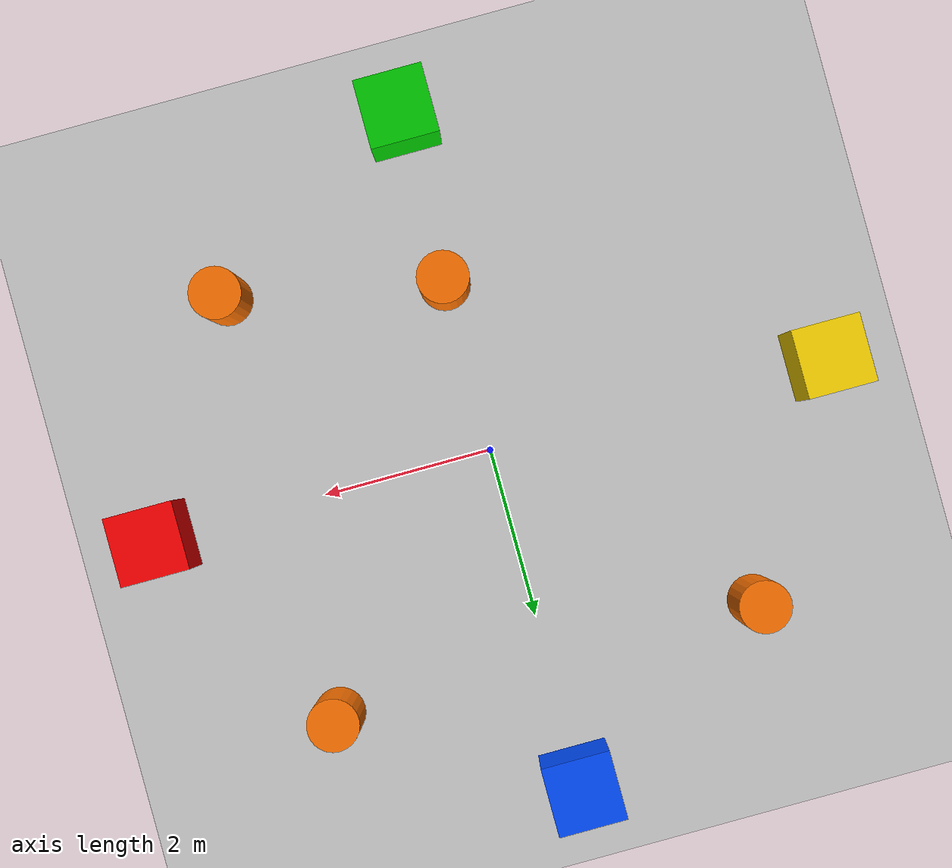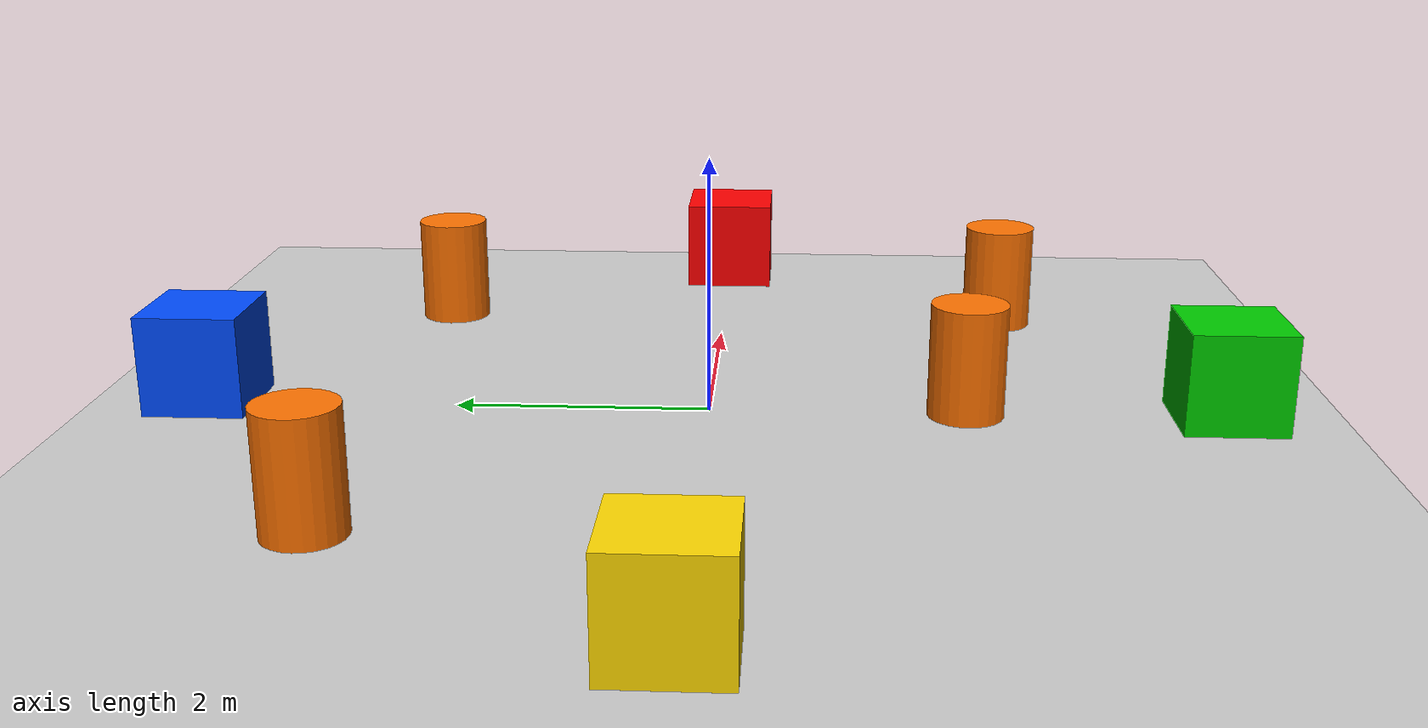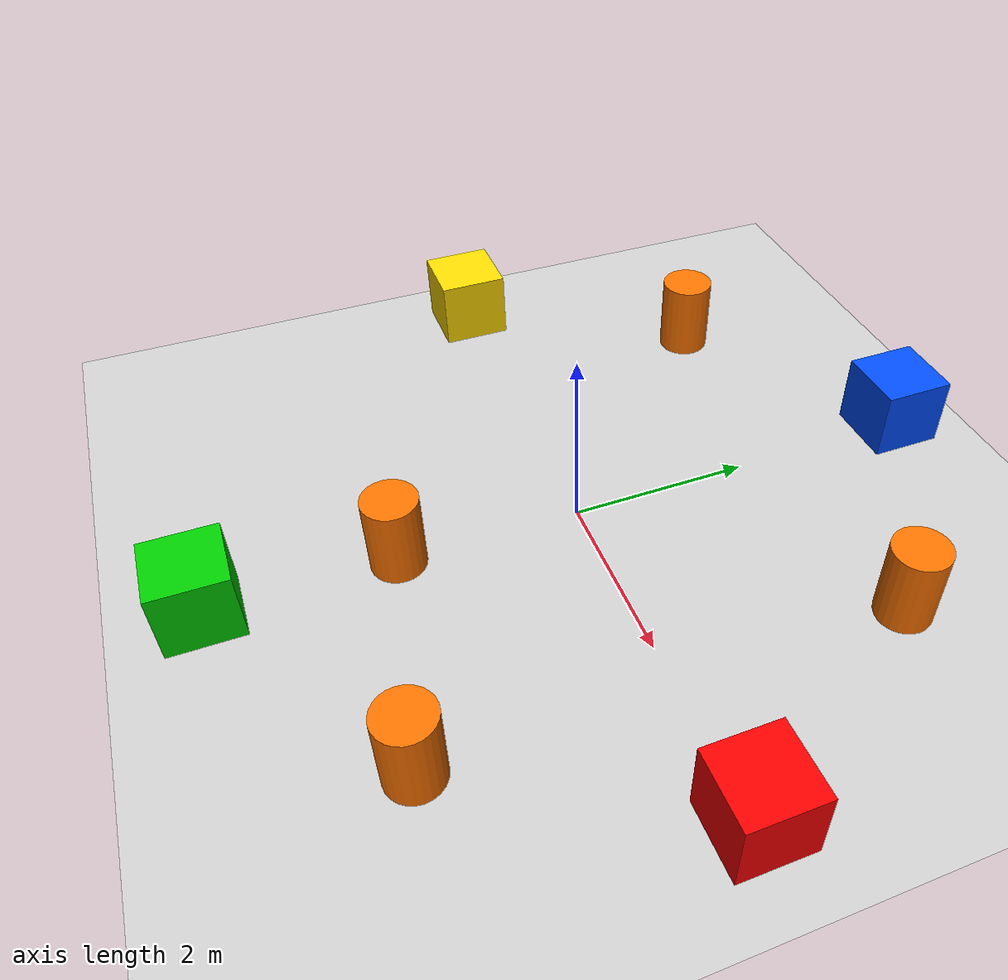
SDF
<?xml version="1.0"?>
<sdf version="1.6">
  <world name="default">
    <include><uri>model://ground_plane</uri></include>
    <include><uri>model://sun</uri></include>

    <gui fullscreen="0">
      <camera name="user_camera">
        <pose>-5 -5 6 0 0.7 0.785</pose>
      </camera>
    </gui>

    <model name="kirmizi_on">
      <static>true</static>
      <pose>4 0 0.4 0 0 0</pose>
      <link name="link">
        <collision name="collision"><geometry><box><size>0.8 0.8 0.8</size></box></geometry></collision>
        <visual name="visual">
          <geometry><box><size>0.8 0.8 0.8</size></box></geometry>
          <material><ambient>1 0 0 1</ambient><diffuse>1 0 0 1</diffuse></material>
        </visual>
      </link>
    </model>
    <model name="mavi_sol">
      <static>true</static>
      <pose>0 4 0.4 0 0 0</pose>
      <link name="link">
        <collision name="collision"><geometry><box><size>0.8 0.8 0.8</size></box></geometry></collision>
        <visual name="visual">
          <geometry><box><size>0.8 0.8 0.8</size></box></geometry>
          <material><ambient>0 0.3 1 1</ambient><diffuse>0 0.3 1 1</diffuse></material>
        </visual>
      </link>
    </model>
    <model name="yesil_sag">
      <static>true</static>
      <pose>0 -4 0.4 0 0 0</pose>
      <link name="link">
        <collision name="collision"><geometry><box><size>0.8 0.8 0.8</size></box></geometry></collision>
        <visual name="visual">
          <geometry><box><size>0.8 0.8 0.8</size></box></geometry>
          <material><ambient>0 0.8 0 1</ambient><diffuse>0 0.8 0 1</diffuse></material>
        </visual>
      </link>
    </model>
    <model name="sari_arka">
      <static>true</static>
      <pose>-4 0 0.4 0 0 0</pose>
      <link name="link">
        <collision name="collision"><geometry><box><size>0.8 0.8 0.8</size></box></geometry></collision>
        <visual name="visual">
          <geometry><box><size>0.8 0.8 0.8</size></box></geometry>
          <material><ambient>1 0.85 0 1</ambient><diffuse>1 0.85 0 1</diffuse></material>
        </visual>
      </link>
    </model>
    <model name="varil_sag_yol">
      <static>true</static>
      <pose>0 -2 0.45 0 0 0</pose>
      <link name="link">
        <collision name="collision"><geometry><cylinder><radius>0.3</radius><length>0.9</length></cylinder></geometry></collision>
        <visual name="visual">
          <geometry><cylinder><radius>0.3</radius><length>0.9</length></cylinder></geometry>
          <material><ambient>1 0.45 0 1</ambient><diffuse>1 0.45 0 1</diffuse></material>
        </visual>
      </link>
    </model>
    <model name="varil_1">
      <static>true</static>
      <pose>2.5 2.5 0.45 0 0 0</pose>
      <link name="link">
        <collision name="collision"><geometry><cylinder><radius>0.3</radius><length>0.9</length></cylinder></geometry></collision>
        <visual name="visual">
          <geometry><cylinder><radius>0.3</radius><length>0.9</length></cylinder></geometry>
          <material><ambient>1 0.45 0 1</ambient><diffuse>1 0.45 0 1</diffuse></material>
        </visual>
      </link>
    </model>
    <model name="varil_2">
      <static>true</static>
      <pose>-2.5 2.5 0.45 0 0 0</pose>
      <link name="link">
        <collision name="collision"><geometry><cylinder><radius>0.3</radius><length>0.9</length></cylinder></geometry></collision>
        <visual name="visual">
          <geometry><cylinder><radius>0.3</radius><length>0.9</length></cylinder></geometry>
          <material><ambient>1 0.45 0 1</ambient><diffuse>1 0.45 0 1</diffuse></material>
        </visual>
      </link>
    </model>
    <model name="varil_3">
      <static>true</static>
      <pose>2.5 -2.5 0.45 0 0 0</pose>
      <link name="link">
        <collision name="collision"><geometry><cylinder><radius>0.3</radius><length>0.9</length></cylinder></geometry></collision>
        <visual name="visual">
          <geometry><cylinder><radius>0.3</radius><length>0.9</length></cylinder></geometry>
          <material><ambient>1 0.45 0 1</ambient><diffuse>1 0.45 0 1</diffuse></material>
        </visual>
      </link>
    </model>
  </world>
</sdf>
